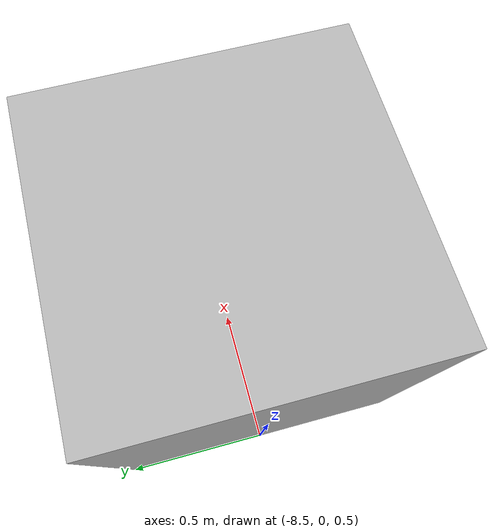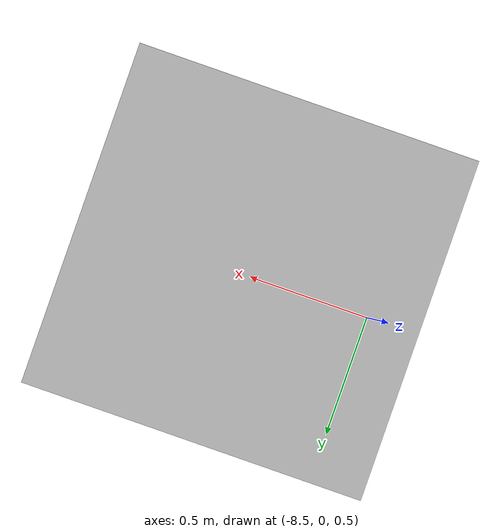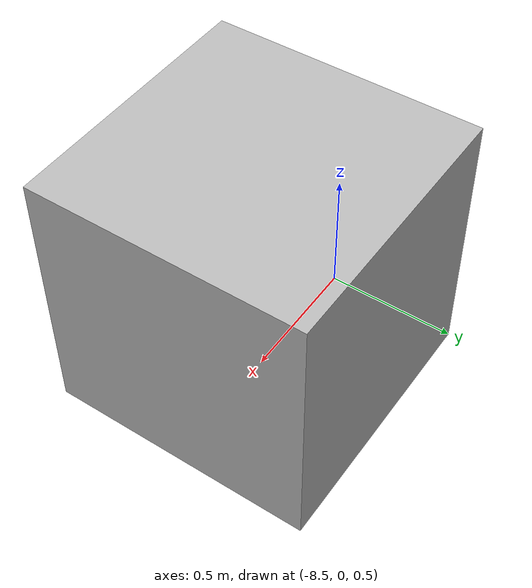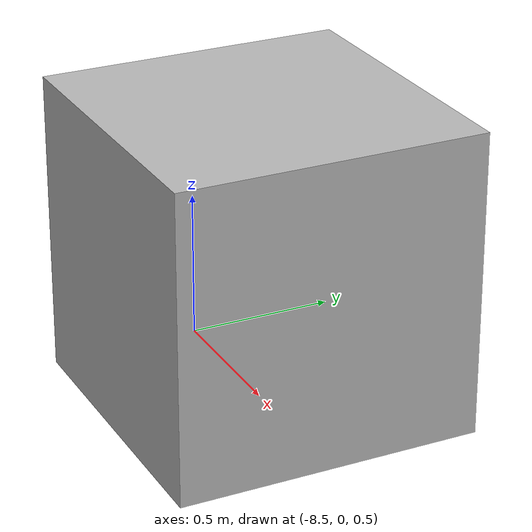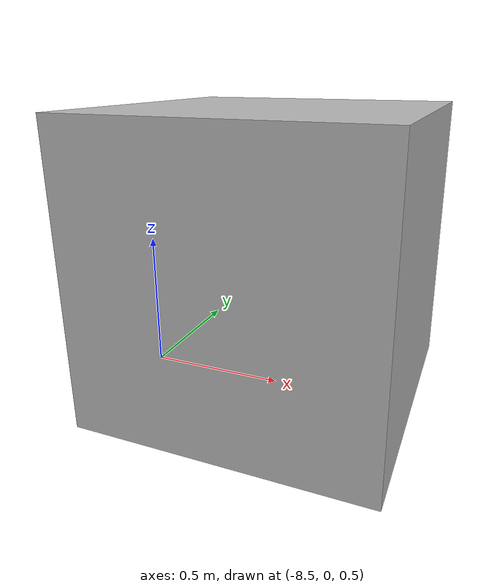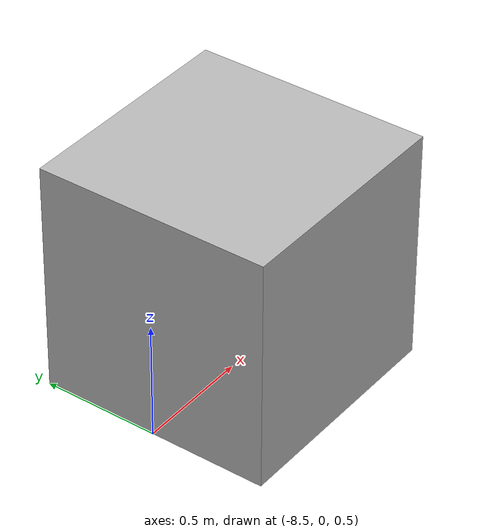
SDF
<?xml version="1.0" ?>
<!--
  Gazebo ROS logical camera plugin demo

  Try for example:

  * Launch Gazebo and echo ros2 topic /ros_logical_camera/post/link/logical_camera/models

-->
<sdf version="1.6">
  <world name="default">

    <include>
      <uri>model://sun</uri>
    </include>
    <model name="post">
      <pose>0 0 3 0 0 3.14159</pose>
      <static>true</static>
      <link name="link">
        <sensor name="logical_camera" type="logical_camera">
          <logical_camera>
            <near>0.55</near>
            <far>8</far>
            <horizontal_fov>1.05</horizontal_fov>
            <aspect_ratio>1.8</aspect_ratio>
          </logical_camera>

          <visualize>true</visualize>
          <always_on>true</always_on>
          <update_rate>10</update_rate>

          <plugin name="ros_logical_camera" filename="libgazebo_ros_logical_camera.so">
          </plugin>
        </sensor>
      </link>
    </model>

    <model name="target_box">
      <static>true</static>
      <pose>-8 0 1 0 0 0</pose>
      <link name="link">
        <collision name="collision">
          <geometry>
            <box>
              <size>1 1 1</size>
            </box>
          </geometry>
        </collision>
        <visual name="visual">
          <geometry>
            <box>
              <size>1 1 1</size>
            </box>
          </geometry>
        </visual>
      </link>
    </model>

  </world>
</sdf>
